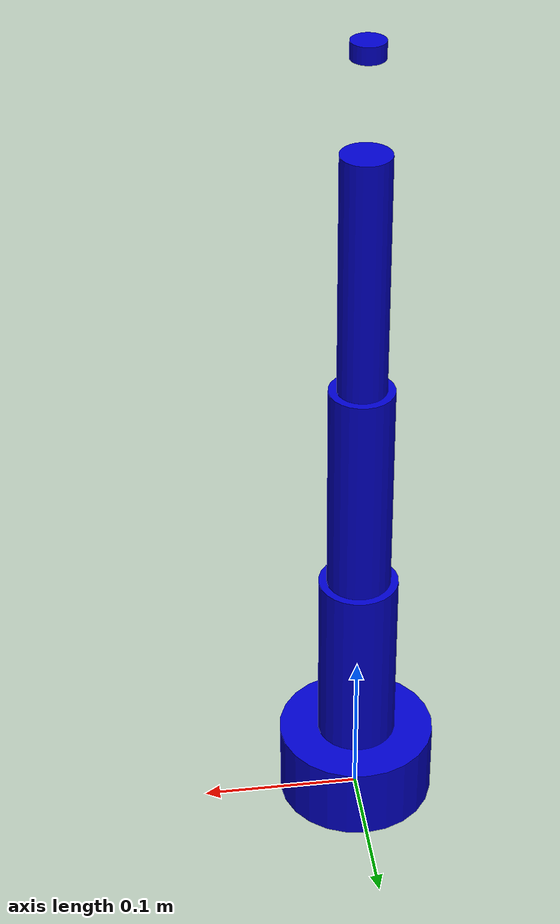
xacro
<?xml version="1.0"?>
<robot xmlns:xacro="http://www.ros.org/wiki/xacro" name="visual">
    <xacro:arg name="initial_positions_file" default="initial_positions.yaml" />

    <!-- Import visual urdf file -->
    <xacro:include filename="$(find adi_robotarm)/urdf/adi_robotarm.urdf" />

    <!-- Import control_xacro -->
    <xacro:include filename="visual.ros2_control.xacro" />

    <xacro:visual_ros2_control name="FakeSystem" initial_positions_file="$(arg initial_positions_file)"/>

</robot>

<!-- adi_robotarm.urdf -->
<robot name="visual">

  <!-- Materials -->
  <material name="blue">
    <color rgba="0 0 0.8 1"/>
  </material>

  <material name="black">
    <color rgba="0 0 0 1"/>
  </material>

  <!-- BASE -->
  <link name="base_link">
    <visual>
      <geometry>
        <cylinder length="0.05" radius="0.05"/>
      </geometry>
      <origin xyz="0 0 0.025"/>
      <material name="blue"/>
    </visual>

    <collision>
      <geometry>
        <cylinder length="0.05" radius="0.06"/>
      </geometry>
      <origin xyz="0 0 0.025"/>
    </collision>

    <inertial>
      <mass value="10"/>
      <origin xyz="0 0 0.025"/>
      <inertia
        ixx="0.00833333"
        ixy="0"
        ixz="0"
        iyy="0.00833333"
        iyz="0"
        izz="0.0125"/>
    </inertial>
  </link>

  <!-- COLUMN -->
  <link name="column_link">
    <visual>
      <geometry>
        <cylinder length="0.12" radius="0.025"/>
      </geometry>
      <origin xyz="0 0 0.06"/>
      <material name="blue"/>
    </visual>

    <collision>
      <geometry>
        <cylinder length="0.12" radius="0.035"/>
      </geometry>
      <origin xyz="0 0 0.06"/>
    </collision>

    <inertial>
      <mass value="0.235619"/>
      <origin xyz="0 0 0.06"/>
      <inertia
        ixx="0.000319559"
        ixy="0"
        ixz="0"
        iyy="0.000319559"
        iyz="0"
        izz="0.000073631"/>
    </inertial>
  </link>

  <!-- BASE JOINT -->
  <joint name="base_joint" type="revolute">
    <parent link="base_link"/>
    <child link="column_link"/>
    <axis xyz="0 0 1"/>
    <origin xyz="0 0 0.05"/>
    <limit effort="100"
           lower="-0.78539819"
           upper="0.78539819"
           velocity="0.5"/>
  </joint>

  <!-- UPPER ARM -->
  <link name="upper_arm_link">
    <visual>
      <geometry>
        <cylinder length="0.14" radius="0.02"/>
      </geometry>
      <origin xyz="0 0 0.07"/>
      <material name="blue"/>
    </visual>

    <collision>
      <geometry>
        <cylinder length="0.14" radius="0.03"/>
      </geometry>
      <origin xyz="0 0 0.07"/>
    </collision>

    <inertial>
      <mass value="0.175929"/>
      <origin xyz="0 0 0.07"/>
      <inertia
        ixx="0.000304944"
        ixy="0"
        ixz="0"
        iyy="0.000304944"
        iyz="0"
        izz="0.000035186"/>
    </inertial>
  </link>

  <!-- SHOULDER -->
  <joint name="shoulder_joint" type="revolute">
    <parent link="column_link"/>
    <child link="upper_arm_link"/>
    <axis xyz="0 1 0"/>
    <origin xyz="0 0 0.12"/>
    <limit effort="81"
           lower="-1.5707964"
           upper="1.5707964"
           velocity="0.5"/>
  </joint>

  <!-- LOWER ARM -->
  <link name="lower_arm_link">
    <visual>
      <geometry>
        <cylinder length="0.15" radius="0.015"/>
      </geometry>
      <origin xyz="0 0 0.075"/>
      <material name="blue"/>
    </visual>

    <collision>
      <geometry>
        <cylinder length="0.15" radius="0.025"/>
      </geometry>
      <origin xyz="0 0 0.075"/>
    </collision>

    <inertial>
      <mass value="0.106029"/>
      <origin xyz="0 0 0.075"/>
      <inertia
        ixx="0.000204768"
        ixy="0"
        ixz="0"
        iyy="0.000204768"
        iyz="0"
        izz="0.000011928"/>
    </inertial>
  </link>

  <!-- ELBOW -->
  <joint name="elbow_joint" type="revolute">
    <parent link="upper_arm_link"/>
    <child link="lower_arm_link"/>
    <axis xyz="0 1 0"/>
    <origin xyz="0 0 0.14"/>
    <limit effort="81"
           lower="-1.5707964"
           upper="1.5707964"
           velocity="0.5"/>
  </joint>

  <!-- END EFFECTOR -->
  <link name="end_effector_link">
    <visual>
      <geometry>
        <cylinder length="0.01" radius="0.01"/>
      </geometry>
      <origin xyz="0 0 0.06"/>
      <material name="blue"/>
    </visual>

    <collision>
      <geometry>
        <cylinder length="0.01" radius="0.01"/>
      </geometry>
      <origin xyz="0 0 0.06"/>
    </collision>

    <inertial>
      <mass value="0.037699"/>
      <origin xyz="0 0 0.06"/>
      <inertia
        ixx="0.000046181"
        ixy="0"
        ixz="0"
        iyy="0.000046181"
        iyz="0"
        izz="0.000001885"/>
    </inertial>
  </link>

  <!-- WRIST -->
  <joint name="wrist_joint" type="revolute">
	<parent link="lower_arm_link"/>
      	<child link="end_effector_link"/>
  	<axis xyz="0 1 0"/>
  	<origin xyz="0 0 0.15"/>

 	 <limit effort="5"
        	 lower="-3"
         	upper="3"
  	       velocity="2.0"/>

  	<dynamics damping="0.3" friction="0.1"/>
  </joint>
</robot>
